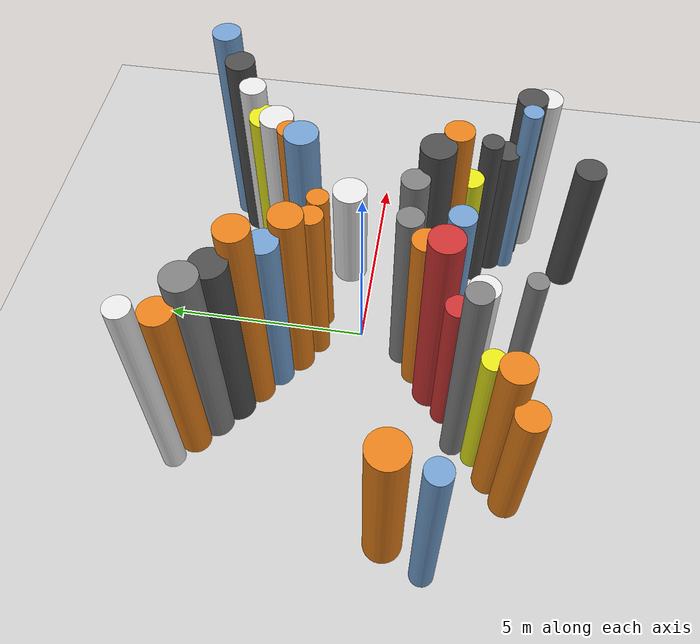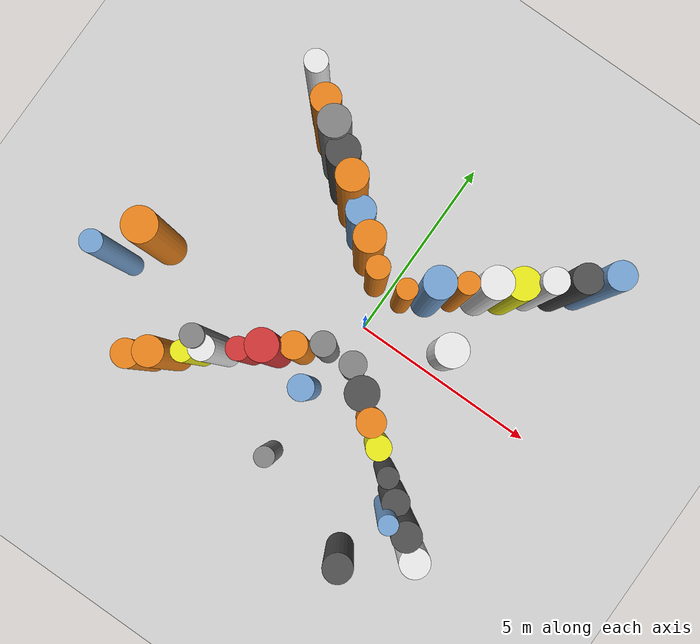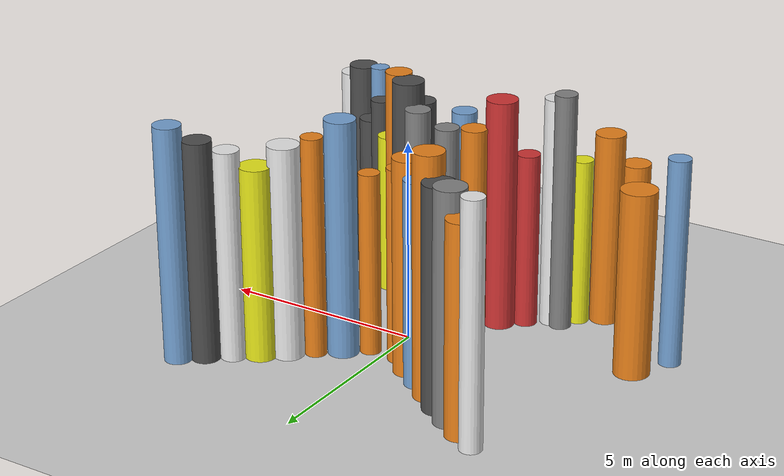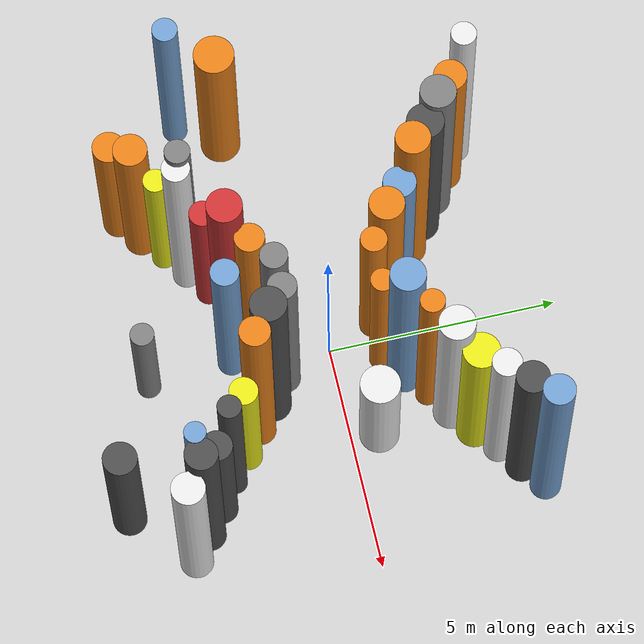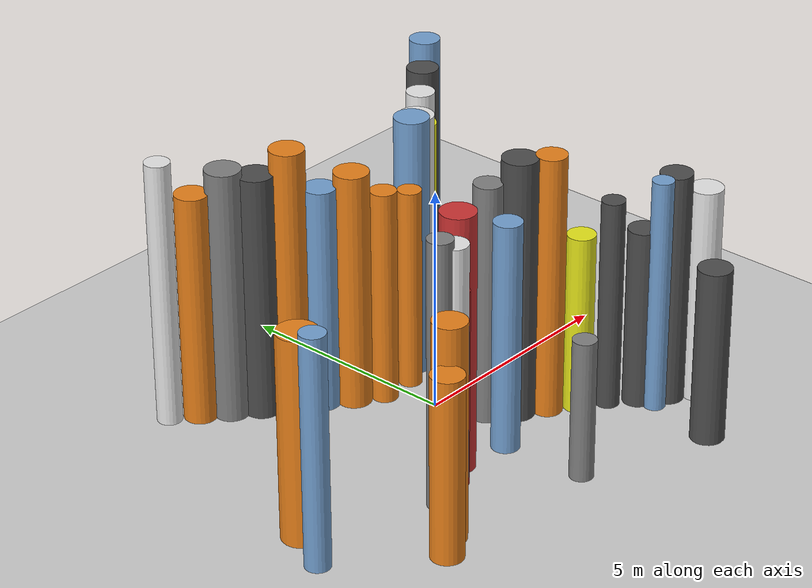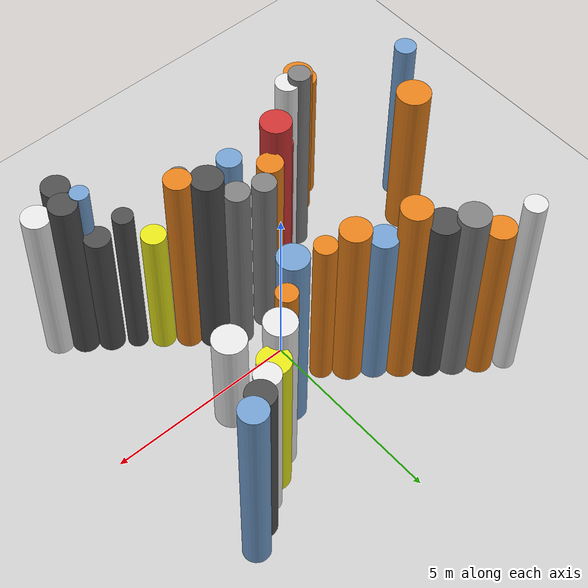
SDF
<?xml version='1.0'?>
<sdf version='1.6'>
  <world name='routeA_rl_v1__dense_recovery__rl_train__bottleneck_corridor__000060'>
    <!-- Sun light -->
    <light name='sun' type='directional'>
      <cast_shadows>1</cast_shadows>
      <pose>0 0 10 0 0 0</pose>
      <diffuse>0.8 0.8 0.8 1</diffuse>
      <specular>0.2 0.2 0.2 1</specular>
      <attenuation>
        <range>1000</range>
        <constant>0.9</constant>
        <linear>0.01</linear>
        <quadratic>0.001</quadratic>
      </attenuation>
      <direction>-0.5 0.1 -0.9</direction>
    </light>

    <!-- Ground plane -->
    <model name='ground_plane'>
      <static>1</static>
      <link name='link'>
        <collision name='collision'>
          <geometry>
            <plane>
              <normal>0 0 1</normal>
              <size>100 100</size>
            </plane>
          </geometry>
          <surface>
            <contact>
              <collide_bitmask>65535</collide_bitmask>
              <ode/>
            </contact>
            <friction>
              <ode>
                <mu>100</mu>
                <mu2>50</mu2>
              </ode>
              <torsional><ode/></torsional>
            </friction>
            <bounce/>
          </surface>
          <max_contacts>10</max_contacts>
        </collision>
        <visual name='visual'>
          <cast_shadows>0</cast_shadows>
          <geometry>
            <plane>
              <normal>0 0 1</normal>
              <size>100 100</size>
            </plane>
          </geometry>
          <material>
            <script>
              <uri>file://media/materials/scripts/gazebo.material</uri>
              <n>Gazebo/Grey</n>
            </script>
          </material>
        </visual>
      </link>
    </model>

    <!-- Environment -->
    <magnetic_field>6e-06 2.3e-05 -4.2e-05</magnetic_field>
    <atmosphere type='adiabatic'/>
    <physics name='default_physics' default='0' type='ode'>
      <gravity>0 0 -9.8</gravity>
      <max_step_size>0.004</max_step_size>
      <real_time_factor>1</real_time_factor>
      <real_time_update_rate>250</real_time_update_rate>
    </physics>
    <scene>
      <ambient>0.4 0.4 0.4 1</ambient>
      <background>0.7 0.7 0.7 1</background>
      <shadows>1</shadows>
    </scene>
    <wind/>
    <spherical_coordinates>
      <surface_model>EARTH_WGS84</surface_model>
      <latitude_deg>0</latitude_deg>
      <longitude_deg>0</longitude_deg>
      <elevation>0</elevation>
      <heading_deg>0</heading_deg>
    </spherical_coordinates>

    <!-- ============ OBSTACLES (40) ============ -->
    <model name='funnel_l_0'>
      <static>1</static>
      <link name='link'>
        <visual name='visual'>
          <geometry>
            <cylinder>
              <radius>0.3491</radius>
              <length>4.0677</length>
            </cylinder>
          </geometry>
          <material>
            <script>
              <n>Gazebo/Orange</n>
              <uri>file://media/materials/scripts/gazebo.material</uri>
            </script>
            <ambient>0.9 0.5 0.1 1</ambient>
          </material>
        </visual>
        <collision name='collision'>
          <geometry>
            <cylinder>
              <radius>0.3491</radius>
              <length>4.0677</length>
            </cylinder>
          </geometry>
          <max_contacts>10</max_contacts>
          <surface>
            <contact><ode/></contact>
            <bounce/>
            <friction>
              <ode><mu>1</mu><mu2>1</mu2></ode>
              <torsional><ode/></torsional>
            </friction>
          </surface>
        </collision>
      </link>
      <pose>-4.0000 -3.8000 2.0338 0 0 0.0000</pose>
    </model>

    <model name='funnel_r_0'>
      <static>1</static>
      <link name='link'>
        <visual name='visual'>
          <geometry>
            <cylinder>
              <radius>0.2700</radius>
              <length>5.9533</length>
            </cylinder>
          </geometry>
          <material>
            <script>
              <n>Gazebo/White</n>
              <uri>file://media/materials/scripts/gazebo.material</uri>
            </script>
            <ambient>0.9 0.9 0.9 1</ambient>
          </material>
        </visual>
        <collision name='collision'>
          <geometry>
            <cylinder>
              <radius>0.2700</radius>
              <length>5.9533</length>
            </cylinder>
          </geometry>
          <max_contacts>10</max_contacts>
          <surface>
            <contact><ode/></contact>
            <bounce/>
            <friction>
              <ode><mu>1</mu><mu2>1</mu2></ode>
              <torsional><ode/></torsional>
            </friction>
          </surface>
        </collision>
      </link>
      <pose>-4.0000 3.8000 2.9767 0 0 0.0000</pose>
    </model>

    <model name='funnel_l_1'>
      <static>1</static>
      <link name='link'>
        <visual name='visual'>
          <geometry>
            <cylinder>
              <radius>0.3647</radius>
              <length>4.8556</length>
            </cylinder>
          </geometry>
          <material>
            <script>
              <n>Gazebo/Orange</n>
              <uri>file://media/materials/scripts/gazebo.material</uri>
            </script>
            <ambient>0.9 0.5 0.1 1</ambient>
          </material>
        </visual>
        <collision name='collision'>
          <geometry>
            <cylinder>
              <radius>0.3647</radius>
              <length>4.8556</length>
            </cylinder>
          </geometry>
          <max_contacts>10</max_contacts>
          <surface>
            <contact><ode/></contact>
            <bounce/>
            <friction>
              <ode><mu>1</mu><mu2>1</mu2></ode>
              <torsional><ode/></torsional>
            </friction>
          </surface>
        </collision>
      </link>
      <pose>-3.4857 -3.4071 2.4278 0 0 0.0000</pose>
    </model>

    <model name='funnel_r_1'>
      <static>1</static>
      <link name='link'>
        <visual name='visual'>
          <geometry>
            <cylinder>
              <radius>0.3554</radius>
              <length>5.1906</length>
            </cylinder>
          </geometry>
          <material>
            <script>
              <n>Gazebo/Orange</n>
              <uri>file://media/materials/scripts/gazebo.material</uri>
            </script>
            <ambient>0.9 0.5 0.1 1</ambient>
          </material>
        </visual>
        <collision name='collision'>
          <geometry>
            <cylinder>
              <radius>0.3554</radius>
              <length>5.1906</length>
            </cylinder>
          </geometry>
          <max_contacts>10</max_contacts>
          <surface>
            <contact><ode/></contact>
            <bounce/>
            <friction>
              <ode><mu>1</mu><mu2>1</mu2></ode>
              <torsional><ode/></torsional>
            </friction>
          </surface>
        </collision>
      </link>
      <pose>-3.4857 3.4071 2.5953 0 0 0.0000</pose>
    </model>

    <model name='funnel_l_2'>
      <static>1</static>
      <link name='link'>
        <visual name='visual'>
          <geometry>
            <cylinder>
              <radius>0.2615</radius>
              <length>4.2127</length>
            </cylinder>
          </geometry>
          <material>
            <script>
              <n>Gazebo/Yellow</n>
              <uri>file://media/materials/scripts/gazebo.material</uri>
            </script>
            <ambient>0.9 0.9 0.1 1</ambient>
          </material>
        </visual>
        <collision name='collision'>
          <geometry>
            <cylinder>
              <radius>0.2615</radius>
              <length>4.2127</length>
            </cylinder>
          </geometry>
          <max_contacts>10</max_contacts>
          <surface>
            <contact><ode/></contact>
            <bounce/>
            <friction>
              <ode><mu>1</mu><mu2>1</mu2></ode>
              <torsional><ode/></torsional>
            </friction>
          </surface>
        </collision>
      </link>
      <pose>-2.9714 -3.0143 2.1064 0 0 0.0000</pose>
    </model>

    <model name='funnel_r_2'>
      <static>1</static>
      <link name='link'>
        <visual name='visual'>
          <geometry>
            <cylinder>
              <radius>0.3825</radius>
              <length>5.6727</length>
            </cylinder>
          </geometry>
          <material>
            <script>
              <n>Gazebo/Grey</n>
              <uri>file://media/materials/scripts/gazebo.material</uri>
            </script>
            <ambient>0.5 0.5 0.5 1</ambient>
          </material>
        </visual>
        <collision name='collision'>
          <geometry>
            <cylinder>
              <radius>0.3825</radius>
              <length>5.6727</length>
            </cylinder>
          </geometry>
          <max_contacts>10</max_contacts>
          <surface>
            <contact><ode/></contact>
            <bounce/>
            <friction>
              <ode><mu>1</mu><mu2>1</mu2></ode>
              <torsional><ode/></torsional>
            </friction>
          </surface>
        </collision>
      </link>
      <pose>-2.9714 3.0143 2.8363 0 0 0.0000</pose>
    </model>

    <model name='funnel_l_3'>
      <static>1</static>
      <link name='link'>
        <visual name='visual'>
          <geometry>
            <cylinder>
              <radius>0.3007</radius>
              <length>5.7836</length>
            </cylinder>
          </geometry>
          <material>
            <script>
              <n>Gazebo/White</n>
              <uri>file://media/materials/scripts/gazebo.material</uri>
            </script>
            <ambient>0.9 0.9 0.9 1</ambient>
          </material>
        </visual>
        <collision name='collision'>
          <geometry>
            <cylinder>
              <radius>0.3007</radius>
              <length>5.7836</length>
            </cylinder>
          </geometry>
          <max_contacts>10</max_contacts>
          <surface>
            <contact><ode/></contact>
            <bounce/>
            <friction>
              <ode><mu>1</mu><mu2>1</mu2></ode>
              <torsional><ode/></torsional>
            </friction>
          </surface>
        </collision>
      </link>
      <pose>-2.4571 -2.6214 2.8918 0 0 0.0000</pose>
    </model>

    <model name='funnel_r_3'>
      <static>1</static>
      <link name='link'>
        <visual name='visual'>
          <geometry>
            <cylinder>
              <radius>0.3968</radius>
              <length>5.4986</length>
            </cylinder>
          </geometry>
          <material>
            <script>
              <n>Gazebo/DarkGrey</n>
              <uri>file://media/materials/scripts/gazebo.material</uri>
            </script>
            <ambient>0.3 0.3 0.3 1</ambient>
          </material>
        </visual>
        <collision name='collision'>
          <geometry>
            <cylinder>
              <radius>0.3968</radius>
              <length>5.4986</length>
            </cylinder>
          </geometry>
          <max_contacts>10</max_contacts>
          <surface>
            <contact><ode/></contact>
            <bounce/>
            <friction>
              <ode><mu>1</mu><mu2>1</mu2></ode>
              <torsional><ode/></torsional>
            </friction>
          </surface>
        </collision>
      </link>
      <pose>-2.4571 2.6214 2.7493 0 0 0.0000</pose>
    </model>

    <model name='funnel_l_4'>
      <static>1</static>
      <link name='link'>
        <visual name='visual'>
          <geometry>
            <cylinder>
              <radius>0.2839</radius>
              <length>4.4033</length>
            </cylinder>
          </geometry>
          <material>
            <script>
              <n>Gazebo/Red</n>
              <uri>file://media/materials/scripts/gazebo.material</uri>
            </script>
            <ambient>0.8 0.2 0.2 1</ambient>
          </material>
        </visual>
        <collision name='collision'>
          <geometry>
            <cylinder>
              <radius>0.2839</radius>
              <length>4.4033</length>
            </cylinder>
          </geometry>
          <max_contacts>10</max_contacts>
          <surface>
            <contact><ode/></contact>
            <bounce/>
            <friction>
              <ode><mu>1</mu><mu2>1</mu2></ode>
              <torsional><ode/></torsional>
            </friction>
          </surface>
        </collision>
      </link>
      <pose>-1.9429 -2.2286 2.2016 0 0 0.0000</pose>
    </model>

    <model name='funnel_r_4'>
      <static>1</static>
      <link name='link'>
        <visual name='visual'>
          <geometry>
            <cylinder>
              <radius>0.3719</radius>
              <length>5.9933</length>
            </cylinder>
          </geometry>
          <material>
            <script>
              <n>Gazebo/Orange</n>
              <uri>file://media/materials/scripts/gazebo.material</uri>
            </script>
            <ambient>0.9 0.5 0.1 1</ambient>
          </material>
        </visual>
        <collision name='collision'>
          <geometry>
            <cylinder>
              <radius>0.3719</radius>
              <length>5.9933</length>
            </cylinder>
          </geometry>
          <max_contacts>10</max_contacts>
          <surface>
            <contact><ode/></contact>
            <bounce/>
            <friction>
              <ode><mu>1</mu><mu2>1</mu2></ode>
              <torsional><ode/></torsional>
            </friction>
          </surface>
        </collision>
      </link>
      <pose>-1.9429 2.2286 2.9967 0 0 0.0000</pose>
    </model>

    <model name='funnel_l_5'>
      <static>1</static>
      <link name='link'>
        <visual name='visual'>
          <geometry>
            <cylinder>
              <radius>0.3800</radius>
              <length>5.7957</length>
            </cylinder>
          </geometry>
          <material>
            <script>
              <n>Gazebo/Red</n>
              <uri>file://media/materials/scripts/gazebo.material</uri>
            </script>
            <ambient>0.8 0.2 0.2 1</ambient>
          </material>
        </visual>
        <collision name='collision'>
          <geometry>
            <cylinder>
              <radius>0.3800</radius>
              <length>5.7957</length>
            </cylinder>
          </geometry>
          <max_contacts>10</max_contacts>
          <surface>
            <contact><ode/></contact>
            <bounce/>
            <friction>
              <ode><mu>1</mu><mu2>1</mu2></ode>
              <torsional><ode/></torsional>
            </friction>
          </surface>
        </collision>
      </link>
      <pose>-1.4286 -1.8357 2.8978 0 0 0.0000</pose>
    </model>

    <model name='funnel_r_5'>
      <static>1</static>
      <link name='link'>
        <visual name='visual'>
          <geometry>
            <cylinder>
              <radius>0.3512</radius>
              <length>5.0685</length>
            </cylinder>
          </geometry>
          <material>
            <script>
              <n>Gazebo/Blue</n>
              <uri>file://media/materials/scripts/gazebo.material</uri>
            </script>
            <ambient>0.447 0.624 0.812 1</ambient>
          </material>
        </visual>
        <collision name='collision'>
          <geometry>
            <cylinder>
              <radius>0.3512</radius>
              <length>5.0685</length>
            </cylinder>
          </geometry>
          <max_contacts>10</max_contacts>
          <surface>
            <contact><ode/></contact>
            <bounce/>
            <friction>
              <ode><mu>1</mu><mu2>1</mu2></ode>
              <torsional><ode/></torsional>
            </friction>
          </surface>
        </collision>
      </link>
      <pose>-1.4286 1.8357 2.5342 0 0 0.0000</pose>
    </model>

    <model name='funnel_l_6'>
      <static>1</static>
      <link name='link'>
        <visual name='visual'>
          <geometry>
            <cylinder>
              <radius>0.3209</radius>
              <length>5.0973</length>
            </cylinder>
          </geometry>
          <material>
            <script>
              <n>Gazebo/Orange</n>
              <uri>file://media/materials/scripts/gazebo.material</uri>
            </script>
            <ambient>0.9 0.5 0.1 1</ambient>
          </material>
        </visual>
        <collision name='collision'>
          <geometry>
            <cylinder>
              <radius>0.3209</radius>
              <length>5.0973</length>
            </cylinder>
          </geometry>
          <max_contacts>10</max_contacts>
          <surface>
            <contact><ode/></contact>
            <bounce/>
            <friction>
              <ode><mu>1</mu><mu2>1</mu2></ode>
              <torsional><ode/></torsional>
            </friction>
          </surface>
        </collision>
      </link>
      <pose>-0.9143 -1.4429 2.5486 0 0 0.0000</pose>
    </model>

    <model name='funnel_r_6'>
      <static>1</static>
      <link name='link'>
        <visual name='visual'>
          <geometry>
            <cylinder>
              <radius>0.3759</radius>
              <length>5.3513</length>
            </cylinder>
          </geometry>
          <material>
            <script>
              <n>Gazebo/Orange</n>
              <uri>file://media/materials/scripts/gazebo.material</uri>
            </script>
            <ambient>0.9 0.5 0.1 1</ambient>
          </material>
        </visual>
        <collision name='collision'>
          <geometry>
            <cylinder>
              <radius>0.3759</radius>
              <length>5.3513</length>
            </cylinder>
          </geometry>
          <max_contacts>10</max_contacts>
          <surface>
            <contact><ode/></contact>
            <bounce/>
            <friction>
              <ode><mu>1</mu><mu2>1</mu2></ode>
              <torsional><ode/></torsional>
            </friction>
          </surface>
        </collision>
      </link>
      <pose>-0.9143 1.4429 2.6757 0 0 0.0000</pose>
    </model>

    <model name='funnel_l_7'>
      <static>1</static>
      <link name='link'>
        <visual name='visual'>
          <geometry>
            <cylinder>
              <radius>0.2954</radius>
              <length>5.1417</length>
            </cylinder>
          </geometry>
          <material>
            <script>
              <n>Gazebo/Grey</n>
              <uri>file://media/materials/scripts/gazebo.material</uri>
            </script>
            <ambient>0.5 0.5 0.5 1</ambient>
          </material>
        </visual>
        <collision name='collision'>
          <geometry>
            <cylinder>
              <radius>0.2954</radius>
              <length>5.1417</length>
            </cylinder>
          </geometry>
          <max_contacts>10</max_contacts>
          <surface>
            <contact><ode/></contact>
            <bounce/>
            <friction>
              <ode><mu>1</mu><mu2>1</mu2></ode>
              <torsional><ode/></torsional>
            </friction>
          </surface>
        </collision>
      </link>
      <pose>-0.4000 -1.0500 2.5709 0 0 0.0000</pose>
    </model>

    <model name='funnel_r_7'>
      <static>1</static>
      <link name='link'>
        <visual name='visual'>
          <geometry>
            <cylinder>
              <radius>0.2836</radius>
              <length>4.8562</length>
            </cylinder>
          </geometry>
          <material>
            <script>
              <n>Gazebo/Orange</n>
              <uri>file://media/materials/scripts/gazebo.material</uri>
            </script>
            <ambient>0.9 0.5 0.1 1</ambient>
          </material>
        </visual>
        <collision name='collision'>
          <geometry>
            <cylinder>
              <radius>0.2836</radius>
              <length>4.8562</length>
            </cylinder>
          </geometry>
          <max_contacts>10</max_contacts>
          <surface>
            <contact><ode/></contact>
            <bounce/>
            <friction>
              <ode><mu>1</mu><mu2>1</mu2></ode>
              <torsional><ode/></torsional>
            </friction>
          </surface>
        </collision>
      </link>
      <pose>-0.4000 1.0500 2.4281 0 0 0.0000</pose>
    </model>

    <model name='funnel_out_l_0'>
      <static>1</static>
      <link name='link'>
        <visual name='visual'>
          <geometry>
            <cylinder>
              <radius>0.3105</radius>
              <length>5.4259</length>
            </cylinder>
          </geometry>
          <material>
            <script>
              <n>Gazebo/Grey</n>
              <uri>file://media/materials/scripts/gazebo.material</uri>
            </script>
            <ambient>0.5 0.5 0.5 1</ambient>
          </material>
        </visual>
        <collision name='collision'>
          <geometry>
            <cylinder>
              <radius>0.3105</radius>
              <length>5.4259</length>
            </cylinder>
          </geometry>
          <max_contacts>10</max_contacts>
          <surface>
            <contact><ode/></contact>
            <bounce/>
            <friction>
              <ode><mu>1</mu><mu2>1</mu2></ode>
              <torsional><ode/></torsional>
            </friction>
          </surface>
        </collision>
      </link>
      <pose>0.4000 -1.0500 2.7130 0 0 0.0000</pose>
    </model>

    <model name='funnel_out_r_0'>
      <static>1</static>
      <link name='link'>
        <visual name='visual'>
          <geometry>
            <cylinder>
              <radius>0.2544</radius>
              <length>4.5590</length>
            </cylinder>
          </geometry>
          <material>
            <script>
              <n>Gazebo/Orange</n>
              <uri>file://media/materials/scripts/gazebo.material</uri>
            </script>
            <ambient>0.9 0.5 0.1 1</ambient>
          </material>
        </visual>
        <collision name='collision'>
          <geometry>
            <cylinder>
              <radius>0.2544</radius>
              <length>4.5590</length>
            </cylinder>
          </geometry>
          <max_contacts>10</max_contacts>
          <surface>
            <contact><ode/></contact>
            <bounce/>
            <friction>
              <ode><mu>1</mu><mu2>1</mu2></ode>
              <torsional><ode/></torsional>
            </friction>
          </surface>
        </collision>
      </link>
      <pose>0.4000 1.0500 2.2795 0 0 0.0000</pose>
    </model>

    <model name='funnel_out_l_1'>
      <static>1</static>
      <link name='link'>
        <visual name='visual'>
          <geometry>
            <cylinder>
              <radius>0.3872</radius>
              <length>5.9236</length>
            </cylinder>
          </geometry>
          <material>
            <script>
              <n>Gazebo/DarkGrey</n>
              <uri>file://media/materials/scripts/gazebo.material</uri>
            </script>
            <ambient>0.3 0.3 0.3 1</ambient>
          </material>
        </visual>
        <collision name='collision'>
          <geometry>
            <cylinder>
              <radius>0.3872</radius>
              <length>5.9236</length>
            </cylinder>
          </geometry>
          <max_contacts>10</max_contacts>
          <surface>
            <contact><ode/></contact>
            <bounce/>
            <friction>
              <ode><mu>1</mu><mu2>1</mu2></ode>
              <torsional><ode/></torsional>
            </friction>
          </surface>
        </collision>
      </link>
      <pose>0.9143 -1.4429 2.9618 0 0 0.0000</pose>
    </model>

    <model name='funnel_out_r_1'>
      <static>1</static>
      <link name='link'>
        <visual name='visual'>
          <geometry>
            <cylinder>
              <radius>0.3752</radius>
              <length>5.8958</length>
            </cylinder>
          </geometry>
          <material>
            <script>
              <n>Gazebo/Blue</n>
              <uri>file://media/materials/scripts/gazebo.material</uri>
            </script>
            <ambient>0.447 0.624 0.812 1</ambient>
          </material>
        </visual>
        <collision name='collision'>
          <geometry>
            <cylinder>
              <radius>0.3752</radius>
              <length>5.8958</length>
            </cylinder>
          </geometry>
          <max_contacts>10</max_contacts>
          <surface>
            <contact><ode/></contact>
            <bounce/>
            <friction>
              <ode><mu>1</mu><mu2>1</mu2></ode>
              <torsional><ode/></torsional>
            </friction>
          </surface>
        </collision>
      </link>
      <pose>0.9143 1.4429 2.9479 0 0 0.0000</pose>
    </model>

    <model name='funnel_out_l_2'>
      <static>1</static>
      <link name='link'>
        <visual name='visual'>
          <geometry>
            <cylinder>
              <radius>0.3273</radius>
              <length>5.9298</length>
            </cylinder>
          </geometry>
          <material>
            <script>
              <n>Gazebo/Orange</n>
              <uri>file://media/materials/scripts/gazebo.material</uri>
            </script>
            <ambient>0.9 0.5 0.1 1</ambient>
          </material>
        </visual>
        <collision name='collision'>
          <geometry>
            <cylinder>
              <radius>0.3273</radius>
              <length>5.9298</length>
            </cylinder>
          </geometry>
          <max_contacts>10</max_contacts>
          <surface>
            <contact><ode/></contact>
            <bounce/>
            <friction>
              <ode><mu>1</mu><mu2>1</mu2></ode>
              <torsional><ode/></torsional>
            </friction>
          </surface>
        </collision>
      </link>
      <pose>1.4286 -1.8357 2.9649 0 0 0.0000</pose>
    </model>

    <model name='funnel_out_r_2'>
      <static>1</static>
      <link name='link'>
        <visual name='visual'>
          <geometry>
            <cylinder>
              <radius>0.2612</radius>
              <length>5.4840</length>
            </cylinder>
          </geometry>
          <material>
            <script>
              <n>Gazebo/Orange</n>
              <uri>file://media/materials/scripts/gazebo.material</uri>
            </script>
            <ambient>0.9 0.5 0.1 1</ambient>
          </material>
        </visual>
        <collision name='collision'>
          <geometry>
            <cylinder>
              <radius>0.2612</radius>
              <length>5.4840</length>
            </cylinder>
          </geometry>
          <max_contacts>10</max_contacts>
          <surface>
            <contact><ode/></contact>
            <bounce/>
            <friction>
              <ode><mu>1</mu><mu2>1</mu2></ode>
              <torsional><ode/></torsional>
            </friction>
          </surface>
        </collision>
      </link>
      <pose>1.4286 1.8357 2.7420 0 0 0.0000</pose>
    </model>

    <model name='funnel_out_l_3'>
      <static>1</static>
      <link name='link'>
        <visual name='visual'>
          <geometry>
            <cylinder>
              <radius>0.3065</radius>
              <length>4.0651</length>
            </cylinder>
          </geometry>
          <material>
            <script>
              <n>Gazebo/Yellow</n>
              <uri>file://media/materials/scripts/gazebo.material</uri>
            </script>
            <ambient>0.9 0.9 0.1 1</ambient>
          </material>
        </visual>
        <collision name='collision'>
          <geometry>
            <cylinder>
              <radius>0.3065</radius>
              <length>4.0651</length>
            </cylinder>
          </geometry>
          <max_contacts>10</max_contacts>
          <surface>
            <contact><ode/></contact>
            <bounce/>
            <friction>
              <ode><mu>1</mu><mu2>1</mu2></ode>
              <torsional><ode/></torsional>
            </friction>
          </surface>
        </collision>
      </link>
      <pose>1.9429 -2.2286 2.0326 0 0 0.0000</pose>
    </model>

    <model name='funnel_out_r_3'>
      <static>1</static>
      <link name='link'>
        <visual name='visual'>
          <geometry>
            <cylinder>
              <radius>0.3864</radius>
              <length>5.3175</length>
            </cylinder>
          </geometry>
          <material>
            <script>
              <n>Gazebo/White</n>
              <uri>file://media/materials/scripts/gazebo.material</uri>
            </script>
            <ambient>0.9 0.9 0.9 1</ambient>
          </material>
        </visual>
        <collision name='collision'>
          <geometry>
            <cylinder>
              <radius>0.3864</radius>
              <length>5.3175</length>
            </cylinder>
          </geometry>
          <max_contacts>10</max_contacts>
          <surface>
            <contact><ode/></contact>
            <bounce/>
            <friction>
              <ode><mu>1</mu><mu2>1</mu2></ode>
              <torsional><ode/></torsional>
            </friction>
          </surface>
        </collision>
      </link>
      <pose>1.9429 2.2286 2.6587 0 0 0.0000</pose>
    </model>

    <model name='funnel_out_l_4'>
      <static>1</static>
      <link name='link'>
        <visual name='visual'>
          <geometry>
            <cylinder>
              <radius>0.2542</radius>
              <length>4.7717</length>
            </cylinder>
          </geometry>
          <material>
            <script>
              <n>Gazebo/DarkGrey</n>
              <uri>file://media/materials/scripts/gazebo.material</uri>
            </script>
            <ambient>0.3 0.3 0.3 1</ambient>
          </material>
        </visual>
        <collision name='collision'>
          <geometry>
            <cylinder>
              <radius>0.2542</radius>
              <length>4.7717</length>
            </cylinder>
          </geometry>
          <max_contacts>10</max_contacts>
          <surface>
            <contact><ode/></contact>
            <bounce/>
            <friction>
              <ode><mu>1</mu><mu2>1</mu2></ode>
              <torsional><ode/></torsional>
            </friction>
          </surface>
        </collision>
      </link>
      <pose>2.4571 -2.6214 2.3858 0 0 0.0000</pose>
    </model>

    <model name='funnel_out_r_4'>
      <static>1</static>
      <link name='link'>
        <visual name='visual'>
          <geometry>
            <cylinder>
              <radius>0.3923</radius>
              <length>4.8225</length>
            </cylinder>
          </geometry>
          <material>
            <script>
              <n>Gazebo/Yellow</n>
              <uri>file://media/materials/scripts/gazebo.material</uri>
            </script>
            <ambient>0.9 0.9 0.1 1</ambient>
          </material>
        </visual>
        <collision name='collision'>
          <geometry>
            <cylinder>
              <radius>0.3923</radius>
              <length>4.8225</length>
            </cylinder>
          </geometry>
          <max_contacts>10</max_contacts>
          <surface>
            <contact><ode/></contact>
            <bounce/>
            <friction>
              <ode><mu>1</mu><mu2>1</mu2></ode>
              <torsional><ode/></torsional>
            </friction>
          </surface>
        </collision>
      </link>
      <pose>2.4571 2.6214 2.4112 0 0 0.0000</pose>
    </model>

    <model name='funnel_out_l_5'>
      <static>1</static>
      <link name='link'>
        <visual name='visual'>
          <geometry>
            <cylinder>
              <radius>0.3296</radius>
              <length>4.0620</length>
            </cylinder>
          </geometry>
          <material>
            <script>
              <n>Gazebo/DarkGrey</n>
              <uri>file://media/materials/scripts/gazebo.material</uri>
            </script>
            <ambient>0.3 0.3 0.3 1</ambient>
          </material>
        </visual>
        <collision name='collision'>
          <geometry>
            <cylinder>
              <radius>0.3296</radius>
              <length>4.0620</length>
            </cylinder>
          </geometry>
          <max_contacts>10</max_contacts>
          <surface>
            <contact><ode/></contact>
            <bounce/>
            <friction>
              <ode><mu>1</mu><mu2>1</mu2></ode>
              <torsional><ode/></torsional>
            </friction>
          </surface>
        </collision>
      </link>
      <pose>2.9714 -3.0143 2.0310 0 0 0.0000</pose>
    </model>

    <model name='funnel_out_r_5'>
      <static>1</static>
      <link name='link'>
        <visual name='visual'>
          <geometry>
            <cylinder>
              <radius>0.3129</radius>
              <length>5.2397</length>
            </cylinder>
          </geometry>
          <material>
            <script>
              <n>Gazebo/White</n>
              <uri>file://media/materials/scripts/gazebo.material</uri>
            </script>
            <ambient>0.9 0.9 0.9 1</ambient>
          </material>
        </visual>
        <collision name='collision'>
          <geometry>
            <cylinder>
              <radius>0.3129</radius>
              <length>5.2397</length>
            </cylinder>
          </geometry>
          <max_contacts>10</max_contacts>
          <surface>
            <contact><ode/></contact>
            <bounce/>
            <friction>
              <ode><mu>1</mu><mu2>1</mu2></ode>
              <torsional><ode/></torsional>
            </friction>
          </surface>
        </collision>
      </link>
      <pose>2.9714 3.0143 2.6199 0 0 0.0000</pose>
    </model>

    <model name='funnel_out_l_6'>
      <static>1</static>
      <link name='link'>
        <visual name='visual'>
          <geometry>
            <cylinder>
              <radius>0.3490</radius>
              <length>5.2597</length>
            </cylinder>
          </geometry>
          <material>
            <script>
              <n>Gazebo/DarkGrey</n>
              <uri>file://media/materials/scripts/gazebo.material</uri>
            </script>
            <ambient>0.3 0.3 0.3 1</ambient>
          </material>
        </visual>
        <collision name='collision'>
          <geometry>
            <cylinder>
              <radius>0.3490</radius>
              <length>5.2597</length>
            </cylinder>
          </geometry>
          <max_contacts>10</max_contacts>
          <surface>
            <contact><ode/></contact>
            <bounce/>
            <friction>
              <ode><mu>1</mu><mu2>1</mu2></ode>
              <torsional><ode/></torsional>
            </friction>
          </surface>
        </collision>
      </link>
      <pose>3.4857 -3.4071 2.6298 0 0 0.0000</pose>
    </model>

    <model name='funnel_out_r_6'>
      <static>1</static>
      <link name='link'>
        <visual name='visual'>
          <geometry>
            <cylinder>
              <radius>0.3496</radius>
              <length>5.4982</length>
            </cylinder>
          </geometry>
          <material>
            <script>
              <n>Gazebo/DarkGrey</n>
              <uri>file://media/materials/scripts/gazebo.material</uri>
            </script>
            <ambient>0.3 0.3 0.3 1</ambient>
          </material>
        </visual>
        <collision name='collision'>
          <geometry>
            <cylinder>
              <radius>0.3496</radius>
              <length>5.4982</length>
            </cylinder>
          </geometry>
          <max_contacts>10</max_contacts>
          <surface>
            <contact><ode/></contact>
            <bounce/>
            <friction>
              <ode><mu>1</mu><mu2>1</mu2></ode>
              <torsional><ode/></torsional>
            </friction>
          </surface>
        </collision>
      </link>
      <pose>3.4857 3.4071 2.7491 0 0 0.0000</pose>
    </model>

    <model name='funnel_out_l_7'>
      <static>1</static>
      <link name='link'>
        <visual name='visual'>
          <geometry>
            <cylinder>
              <radius>0.3561</radius>
              <length>4.8647</length>
            </cylinder>
          </geometry>
          <material>
            <script>
              <n>Gazebo/White</n>
              <uri>file://media/materials/scripts/gazebo.material</uri>
            </script>
            <ambient>0.9 0.9 0.9 1</ambient>
          </material>
        </visual>
        <collision name='collision'>
          <geometry>
            <cylinder>
              <radius>0.3561</radius>
              <length>4.8647</length>
            </cylinder>
          </geometry>
          <max_contacts>10</max_contacts>
          <surface>
            <contact><ode/></contact>
            <bounce/>
            <friction>
              <ode><mu>1</mu><mu2>1</mu2></ode>
              <torsional><ode/></torsional>
            </friction>
          </surface>
        </collision>
      </link>
      <pose>4.0000 -3.8000 2.4324 0 0 0.0000</pose>
    </model>

    <model name='funnel_out_r_7'>
      <static>1</static>
      <link name='link'>
        <visual name='visual'>
          <geometry>
            <cylinder>
              <radius>0.3364</radius>
              <length>5.8822</length>
            </cylinder>
          </geometry>
          <material>
            <script>
              <n>Gazebo/Blue</n>
              <uri>file://media/materials/scripts/gazebo.material</uri>
            </script>
            <ambient>0.447 0.624 0.812 1</ambient>
          </material>
        </visual>
        <collision name='collision'>
          <geometry>
            <cylinder>
              <radius>0.3364</radius>
              <length>5.8822</length>
            </cylinder>
          </geometry>
          <max_contacts>10</max_contacts>
          <surface>
            <contact><ode/></contact>
            <bounce/>
            <friction>
              <ode><mu>1</mu><mu2>1</mu2></ode>
              <torsional><ode/></torsional>
            </friction>
          </surface>
        </collision>
      </link>
      <pose>4.0000 3.8000 2.9411 0 0 0.0000</pose>
    </model>

    <model name='bn_scatter_0'>
      <static>1</static>
      <link name='link'>
        <visual name='visual'>
          <geometry>
            <cylinder>
              <radius>0.2314</radius>
              <length>5.2754</length>
            </cylinder>
          </geometry>
          <material>
            <script>
              <n>Gazebo/Blue</n>
              <uri>file://media/materials/scripts/gazebo.material</uri>
            </script>
            <ambient>0.447 0.624 0.812 1</ambient>
          </material>
        </visual>
        <collision name='collision'>
          <geometry>
            <cylinder>
              <radius>0.2314</radius>
              <length>5.2754</length>
            </cylinder>
          </geometry>
          <max_contacts>10</max_contacts>
          <surface>
            <contact><ode/></contact>
            <bounce/>
            <friction>
              <ode><mu>1</mu><mu2>1</mu2></ode>
              <torsional><ode/></torsional>
            </friction>
          </surface>
        </collision>
      </link>
      <pose>3.0132 -3.4302 2.6377 0 0 0.0000</pose>
    </model>

    <model name='bn_scatter_1'>
      <static>1</static>
      <link name='link'>
        <visual name='visual'>
          <geometry>
            <cylinder>
              <radius>0.3641</radius>
              <length>3.9483</length>
            </cylinder>
          </geometry>
          <material>
            <script>
              <n>Gazebo/DarkGrey</n>
              <uri>file://media/materials/scripts/gazebo.material</uri>
            </script>
            <ambient>0.3 0.3 0.3 1</ambient>
          </material>
        </visual>
        <collision name='collision'>
          <geometry>
            <cylinder>
              <radius>0.3641</radius>
              <length>3.9483</length>
            </cylinder>
          </geometry>
          <max_contacts>10</max_contacts>
          <surface>
            <contact><ode/></contact>
            <bounce/>
            <friction>
              <ode><mu>1</mu><mu2>1</mu2></ode>
              <torsional><ode/></torsional>
            </friction>
          </surface>
        </collision>
      </link>
      <pose>2.7521 -4.9838 1.9741 0 0 0.0000</pose>
    </model>

    <model name='bn_scatter_2'>
      <static>1</static>
      <link name='link'>
        <visual name='visual'>
          <geometry>
            <cylinder>
              <radius>0.4299</radius>
              <length>3.0779</length>
            </cylinder>
          </geometry>
          <material>
            <script>
              <n>Gazebo/White</n>
              <uri>file://media/materials/scripts/gazebo.material</uri>
            </script>
            <ambient>0.9 0.9 0.9 1</ambient>
          </material>
        </visual>
        <collision name='collision'>
          <geometry>
            <cylinder>
              <radius>0.4299</radius>
              <length>3.0779</length>
            </cylinder>
          </geometry>
          <max_contacts>10</max_contacts>
          <surface>
            <contact><ode/></contact>
            <bounce/>
            <friction>
              <ode><mu>1</mu><mu2>1</mu2></ode>
              <torsional><ode/></torsional>
            </friction>
          </surface>
        </collision>
      </link>
      <pose>2.0787 0.6161 1.5389 0 0 0.0000</pose>
    </model>

    <model name='bn_scatter_3'>
      <static>1</static>
      <link name='link'>
        <visual name='visual'>
          <geometry>
            <cylinder>
              <radius>0.4360</radius>
              <length>4.6100</length>
            </cylinder>
          </geometry>
          <material>
            <script>
              <n>Gazebo/Orange</n>
              <uri>file://media/materials/scripts/gazebo.material</uri>
            </script>
            <ambient>0.9 0.5 0.1 1</ambient>
          </material>
        </visual>
        <collision name='collision'>
          <geometry>
            <cylinder>
              <radius>0.4360</radius>
              <length>4.6100</length>
            </cylinder>
          </geometry>
          <max_contacts>10</max_contacts>
          <surface>
            <contact><ode/></contact>
            <bounce/>
            <friction>
              <ode><mu>1</mu><mu2>1</mu2></ode>
              <torsional><ode/></torsional>
            </friction>
          </surface>
        </collision>
      </link>
      <pose>-5.3332 -1.2342 2.3050 0 0 0.0000</pose>
    </model>

    <model name='bn_scatter_4'>
      <static>1</static>
      <link name='link'>
        <visual name='visual'>
          <geometry>
            <cylinder>
              <radius>0.2721</radius>
              <length>5.1578</length>
            </cylinder>
          </geometry>
          <material>
            <script>
              <n>Gazebo/Blue</n>
              <uri>file://media/materials/scripts/gazebo.material</uri>
            </script>
            <ambient>0.447 0.624 0.812 1</ambient>
          </material>
        </visual>
        <collision name='collision'>
          <geometry>
            <cylinder>
              <radius>0.2721</radius>
              <length>5.1578</length>
            </cylinder>
          </geometry>
          <max_contacts>10</max_contacts>
          <surface>
            <contact><ode/></contact>
            <bounce/>
            <friction>
              <ode><mu>1</mu><mu2>1</mu2></ode>
              <torsional><ode/></torsional>
            </friction>
          </surface>
        </collision>
      </link>
      <pose>-5.8682 -2.1468 2.5789 0 0 0.0000</pose>
    </model>

    <model name='bn_scatter_5'>
      <static>1</static>
      <link name='link'>
        <visual name='visual'>
          <geometry>
            <cylinder>
              <radius>0.2560</radius>
              <length>3.1638</length>
            </cylinder>
          </geometry>
          <material>
            <script>
              <n>Gazebo/Grey</n>
              <uri>file://media/materials/scripts/gazebo.material</uri>
            </script>
            <ambient>0.5 0.5 0.5 1</ambient>
          </material>
        </visual>
        <collision name='collision'>
          <geometry>
            <cylinder>
              <radius>0.2560</radius>
              <length>3.1638</length>
            </cylinder>
          </geometry>
          <max_contacts>10</max_contacts>
          <surface>
            <contact><ode/></contact>
            <bounce/>
            <friction>
              <ode><mu>1</mu><mu2>1</mu2></ode>
              <torsional><ode/></torsional>
            </friction>
          </surface>
        </collision>
      </link>
      <pose>-0.0885 -3.9625 1.5819 0 0 0.0000</pose>
    </model>

    <model name='bn_scatter_6'>
      <static>1</static>
      <link name='link'>
        <visual name='visual'>
          <geometry>
            <cylinder>
              <radius>0.3054</radius>
              <length>5.1888</length>
            </cylinder>
          </geometry>
          <material>
            <script>
              <n>Gazebo/Blue</n>
              <uri>file://media/materials/scripts/gazebo.material</uri>
            </script>
            <ambient>0.447 0.624 0.812 1</ambient>
          </material>
        </visual>
        <collision name='collision'>
          <geometry>
            <cylinder>
              <radius>0.3054</radius>
              <length>5.1888</length>
            </cylinder>
          </geometry>
          <max_contacts>10</max_contacts>
          <surface>
            <contact><ode/></contact>
            <bounce/>
            <friction>
              <ode><mu>1</mu><mu2>1</mu2></ode>
              <torsional><ode/></torsional>
            </friction>
          </surface>
        </collision>
      </link>
      <pose>-0.2438 -2.1061 2.5944 0 0 0.0000</pose>
    </model>

    <model name='bn_scatter_7'>
      <static>1</static>
      <link name='link'>
        <visual name='visual'>
          <geometry>
            <cylinder>
              <radius>0.2717</radius>
              <length>5.9664</length>
            </cylinder>
          </geometry>
          <material>
            <script>
              <n>Gazebo/Grey</n>
              <uri>file://media/materials/scripts/gazebo.material</uri>
            </script>
            <ambient>0.5 0.5 0.5 1</ambient>
          </material>
        </visual>
        <collision name='collision'>
          <geometry>
            <cylinder>
              <radius>0.2717</radius>
              <length>5.9664</length>
            </cylinder>
          </geometry>
          <max_contacts>10</max_contacts>
          <surface>
            <contact><ode/></contact>
            <bounce/>
            <friction>
              <ode><mu>1</mu><mu2>1</mu2></ode>
              <torsional><ode/></torsional>
            </friction>
          </surface>
        </collision>
      </link>
      <pose>-2.7400 -2.5209 2.9832 0 0 0.0000</pose>
    </model>

    <!-- GUI camera -->
    <gui fullscreen='0'>
      <camera name='user_camera'>
        <pose>-15 0 18 0 0.85 0.15</pose>
        <view_controller>orbit</view_controller>
        <projection_type>perspective</projection_type>
      </camera>
    </gui>
  </world>
</sdf>
